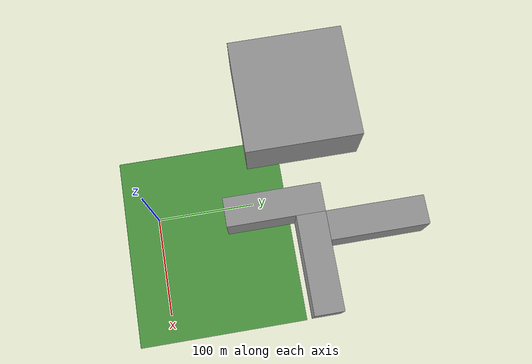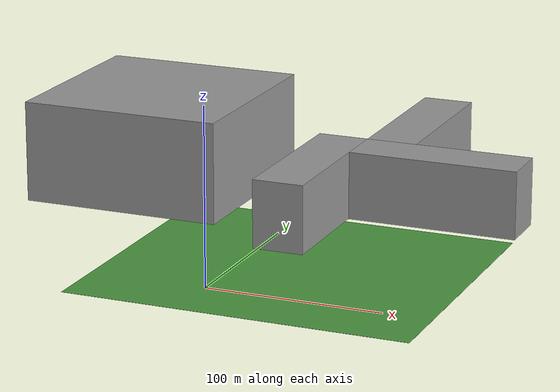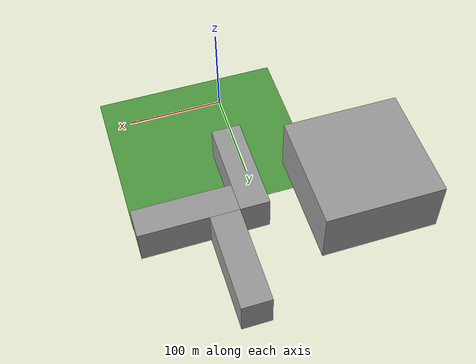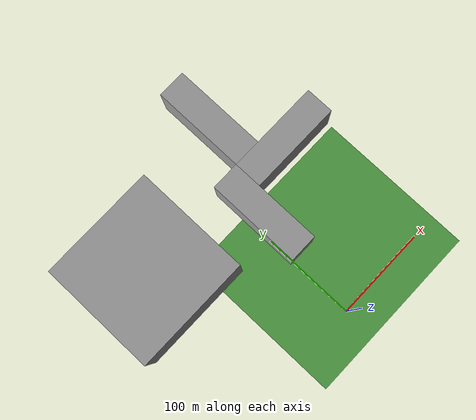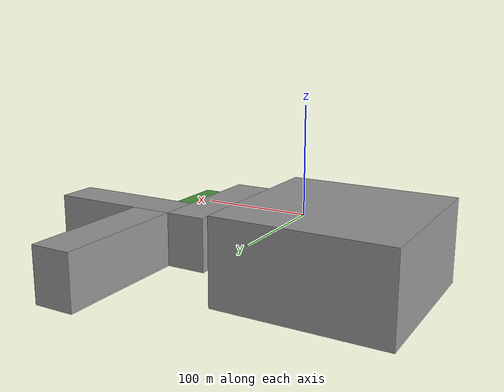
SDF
<sdf version="1.5">
 <world name="default">
  <scene>
   <sky><clouds><speed>8</speed></clouds></sky>
   <grid>false</grid>
   <origin_visual>false</origin_visual>
  </scene>
  <include><uri>model://sun</uri></include>
  <include><uri>model://ki_plane</uri><name>mbzirc_plane</name><pose>30.0 50.0 -0.1 0 0 0</pose></include>
  <include>
   <uri>model://ki_building</uri>
   <name>ki_building_1</name>
   <pose>-100.0 160.0 -0.0 0 0 0</pose>
  </include>
  <include>
   <uri>model://ki_building_2</uri>
   <name>ki_building_2</name>
   <pose>12.0 120.0 -0.0 0 0 0</pose>
  </include>
  <include>
   <uri>model://ki_building_2</uri>
   <name>ki_building_3</name>
   <pose>42.0 220.0 -0.0 0 0 0</pose>
  </include>
  <include>
   <uri>model://ki_building_2</uri>
   <name>ki_building_4</name>
   <pose>77.0 155.0 -0.0 0 0 -1.57079</pose>
  </include>
  <physics name="default_physics" default="0" type="ode">
   <gravity>0 0 -9.8066</gravity>
   <ode>
    <solver>
     <type>quick</type>
     <iters>10</iters>
     <sor>1.3</sor>
     <use_dynamic_moi_rescaling>0</use_dynamic_moi_rescaling>
    </solver>
    <constraints>
     <cfm>0</cfm>
     <erp>0.2</erp>
     <contact_max_correcting_vel>100</contact_max_correcting_vel>
     <contact_surface_layer>0.001</contact_surface_layer>
    </constraints>
   </ode>
   <max_step_size>0.004</max_step_size>
   <real_time_factor>1</real_time_factor>
   <real_time_update_rate>250</real_time_update_rate>
   <magnetic_field>6.0e-6 2.3e-5 -4.2e-5</magnetic_field>
  </physics>
 </world>
</sdf>

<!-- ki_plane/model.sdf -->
<sdf version="1.5">
  <model name="ki_plane">
    <static>true</static>
    <link name="link">
      <collision name="collision">
        <geometry>
          <box>
            <size>195 170 .1</size>
          </box>
        </geometry>
      </collision>
      <visual name="visual">
        <cast_shadows>false</cast_shadows>
        <geometry>
          <box>
            <size>195 170 .1</size>
          </box>
        </geometry>
        <material>
          <script>
            <uri>model://ki_plane/materials/scripts</uri>
            <uri>model://ki_plane/materials/textures</uri>
            <name>vrc/grass</name>
          </script>
        </material>
      </visual>
    </link>
  </model>
</sdf>

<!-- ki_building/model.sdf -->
<sdf version="1.5">
  <model name="ki_building">
    <static>true</static>
    <link name="link">
      <pose>0 0 30.0 0 0 0</pose>
      <collision name="collision">
        <geometry>
          <box>
            <size>120 120 60</size>
          </box>
        </geometry>
      </collision>
      <visual name="visual">
        <geometry>
          <box>
            <size>120 120 60</size>
          </box>
        </geometry>
        <material>
          <script>
            <name>Gazebo/Grey</name>
            <uri>file://media/materials/scripts/gazebo.material</uri>
          </script>
        </material>
      </visual>
    </link>
  </model>
</sdf>

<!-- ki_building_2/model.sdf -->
<sdf version="1.5">
  <model name="ki_building_2">
    <static>true</static>
    <link name="link">
      <pose>0 0 20.0 0 0 0</pose>
      <collision name="collision">
        <geometry>
          <box>
            <size>30 100 40</size>
          </box>
        </geometry>
      </collision>
      <visual name="visual">
        <geometry>
          <box>
            <size>30 100 40</size>
          </box>
        </geometry>
        <material>
          <script>
            <name>Gazebo/Grey</name>
            <uri>file://media/materials/scripts/gazebo.material</uri>
          </script>
        </material>
      </visual>
    </link>
  </model>
</sdf>
